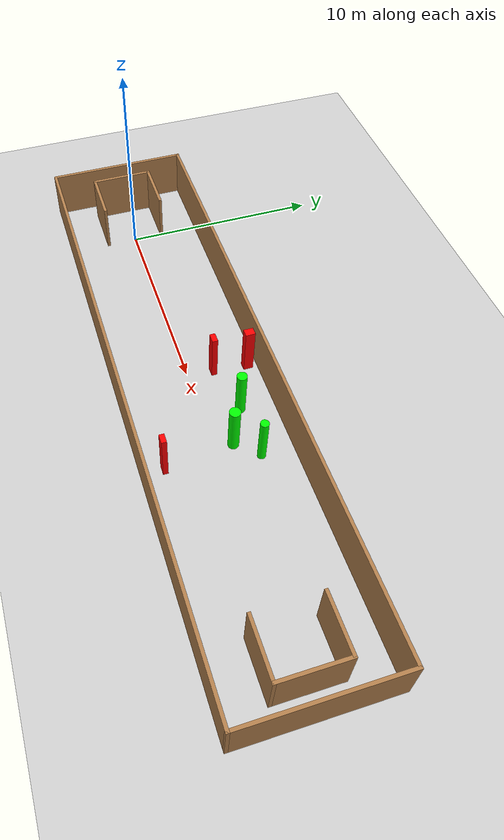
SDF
<sdf version="1.7">
 <world name="default">
  <light name="sun" type="directional">
   <pose>0 0 10 0 -0 0</pose>
   <diffuse>0.8 0.8 0.8 1</diffuse>
   <specular>0.2 0.2 0.2 1</specular>
   <attenuation>
    <range>1000</range>
    <constant>0.9</constant>
    <linear>0.01</linear>
    <quadratic>0.001</quadratic>
   </attenuation>
   <direction>-0.5 0.1 -0.9</direction>
   <spot><inner_angle>0</inner_angle><outer_angle>0</outer_angle><falloff>0</falloff></spot>
  </light>
  <model name="ground_plane">
   <static>1</static>
   <link name="link">
    <collision name="collision">
     <geometry><plane><normal>0 0 1</normal><size>100 100</size></plane></geometry>
     <surface>
      <contact><collide_bitmask>65535</collide_bitmask></contact>
      <friction><ode><mu>100</mu><mu2>50</mu2></ode></friction>
     </surface>
    </collision>
    <visual name="visual">
     <cast_shadows>0</cast_shadows>
     <geometry><plane><normal>0 0 1</normal><size>100 100</size></plane></geometry>
     <material>
      <script><uri>file://media/materials/scripts/gazebo.material</uri><name>Gazebo/Grey</name></script>
     </material>
    </visual>
   </link>
  </model>
  <gravity>0 0 -9.8</gravity>
  <magnetic_field>6e-06 2.3e-05 -4.2e-05</magnetic_field>
  <atmosphere type="adiabatic"/>
  <physics type="ode">
   <max_step_size>0.001</max_step_size>
   <real_time_factor>1</real_time_factor>
   <real_time_update_rate>1000</real_time_update_rate>
  </physics>
  <scene><ambient>0.4 0.4 0.4 1</ambient><background>0.7 0.7 0.7 1</background><shadows>1</shadows></scene>
  <spherical_coordinates>
   <surface_model>EARTH_WGS84</surface_model>
   <latitude_deg>0</latitude_deg>
   <longitude_deg>0</longitude_deg>
   <elevation>0</elevation>
   <heading_deg>0</heading_deg>
  </spherical_coordinates>
  <model name="my_base_walls">
   <link name="Wall_0">
    <collision name="Wall_0_Collision">
     <geometry><box><size>7.15 0.15 2.5</size></box></geometry>
     <pose>0 0 1.25 0 -0 0</pose>
    </collision>
    <visual name="Wall_0_Visual">
     <pose>0 0 1.25 0 -0 0</pose>
     <geometry><box><size>7.15 0.15 2.5</size></box></geometry>
     <material>
      <script><uri>file://media/materials/scripts/gazebo.material</uri><name>Gazebo/Wood</name></script>
      <ambient>1 1 1 1</ambient>
     </material>
     <meta><layer>0</layer></meta>
    </visual>
    <pose>-15 0 0 0 -0 1.5708</pose>
   </link>
   <link name="Wall_10">
    <collision name="Wall_10_Collision">
     <geometry><box><size>2.65 0.15 2.5</size></box></geometry>
     <pose>0 0 1.25 0 -0 0</pose>
    </collision>
    <visual name="Wall_10_Visual">
     <pose>0 0 1.25 0 -0 0</pose>
     <geometry><box><size>2.65 0.15 2.5</size></box></geometry>
     <material>
      <script><uri>file://media/materials/scripts/gazebo.material</uri><name>Gazebo/Wood</name></script>
      <ambient>1 1 1 1</ambient>
     </material>
     <meta><layer>0</layer></meta>
    </visual>
    <pose>-12.75 -1.5 0 0 -0 0</pose>
   </link>
   <link name="Wall_12">
    <collision name="Wall_12_Collision">
     <geometry><box><size>2.65 0.15 2.5</size></box></geometry>
     <pose>0 0 1.25 0 -0 0</pose>
    </collision>
    <visual name="Wall_12_Visual">
     <pose>0 0 1.25 0 -0 0</pose>
     <geometry><box><size>2.65 0.15 2.5</size></box></geometry>
     <material>
      <script><uri>file://media/materials/scripts/gazebo.material</uri><name>Gazebo/Wood</name></script>
      <ambient>1 1 1 1</ambient>
     </material>
     <meta><layer>0</layer></meta>
    </visual>
    <pose>-12.75 1.5 0 0 -0 0</pose>
   </link>
   <link name="Wall_14">
    <collision name="Wall_14_Collision">
     <geometry><box><size>3.15 0.15 2.5</size></box></geometry>
     <pose>0 0 1.25 0 -0 0</pose>
    </collision>
    <visual name="Wall_14_Visual">
     <pose>0 0 1.25 0 -0 0</pose>
     <geometry><box><size>3.15 0.15 2.5</size></box></geometry>
     <material>
      <script><uri>file://media/materials/scripts/gazebo.material</uri><name>Gazebo/Wood</name></script>
      <ambient>1 1 1 1</ambient>
     </material>
     <meta><layer>0</layer></meta>
    </visual>
    <pose>14 0 0 0 -0 -1.5708</pose>
   </link>
   <link name="Wall_15">
    <collision name="Wall_15_Collision">
     <geometry><box><size>2.65 0.15 2.5</size></box></geometry>
     <pose>0 0 1.25 0 -0 0</pose>
    </collision>
    <visual name="Wall_15_Visual">
     <pose>0 0 1.25 0 -0 0</pose>
     <geometry><box><size>2.65 0.15 2.5</size></box></geometry>
     <material>
      <script><uri>file://media/materials/scripts/gazebo.material</uri><name>Gazebo/Wood</name></script>
      <ambient>1 1 1 1</ambient>
     </material>
     <meta><layer>0</layer></meta>
    </visual>
    <pose>12.75 -1.5 0 0 -0 3.14159</pose>
   </link>
   <link name="Wall_17">
    <collision name="Wall_17_Collision">
     <geometry><box><size>2.65 0.15 2.5</size></box></geometry>
     <pose>0 0 1.25 0 -0 0</pose>
    </collision>
    <visual name="Wall_17_Visual">
     <pose>0 0 1.25 0 -0 0</pose>
     <geometry><box><size>2.65 0.15 2.5</size></box></geometry>
     <material>
      <script><uri>file://media/materials/scripts/gazebo.material</uri><name>Gazebo/Wood</name></script>
      <ambient>1 1 1 1</ambient>
     </material>
     <meta><layer>0</layer></meta>
    </visual>
    <pose>12.75 1.5 0 0 -0 3.14159</pose>
   </link>
   <link name="Wall_2">
    <collision name="Wall_2_Collision">
     <geometry><box><size>30.15 0.15 2.5</size></box></geometry>
     <pose>0 0 1.25 0 -0 0</pose>
    </collision>
    <visual name="Wall_2_Visual">
     <pose>0 0 1.25 0 -0 0</pose>
     <geometry><box><size>30.15 0.15 2.5</size></box></geometry>
     <material>
      <script><uri>file://media/materials/scripts/gazebo.material</uri><name>Gazebo/Wood</name></script>
      <ambient>1 1 1 1</ambient>
     </material>
     <meta><layer>0</layer></meta>
    </visual>
    <pose>-0 -3.5 0 0 -0 0</pose>
   </link>
   <link name="Wall_4">
    <collision name="Wall_4_Collision">
     <geometry><box><size>30.15 0.15 2.5</size></box></geometry>
     <pose>0 0 1.25 0 -0 0</pose>
    </collision>
    <visual name="Wall_4_Visual">
     <pose>0 0 1.25 0 -0 0</pose>
     <geometry><box><size>30.15 0.15 2.5</size></box></geometry>
     <material>
      <script><uri>file://media/materials/scripts/gazebo.material</uri><name>Gazebo/Wood</name></script>
      <ambient>1 1 1 1</ambient>
     </material>
     <meta><layer>0</layer></meta>
    </visual>
    <pose>-0 3.5 0 0 -0 0</pose>
   </link>
   <link name="Wall_6">
    <collision name="Wall_6_Collision">
     <geometry><box><size>7.15 0.15 2.5</size></box></geometry>
     <pose>0 0 1.25 0 -0 0</pose>
    </collision>
    <visual name="Wall_6_Visual">
     <pose>0 0 1.25 0 -0 0</pose>
     <geometry><box><size>7.15 0.15 2.5</size></box></geometry>
     <material>
      <script><uri>file://media/materials/scripts/gazebo.material</uri><name>Gazebo/Wood</name></script>
      <ambient>1 1 1 1</ambient>
     </material>
     <meta><layer>0</layer></meta>
    </visual>
    <pose>15 0 0 0 -0 -1.5708</pose>
   </link>
   <link name="Wall_9">
    <collision name="Wall_9_Collision">
     <geometry><box><size>3.15 0.15 2.5</size></box></geometry>
     <pose>0 0 1.25 0 -0 0</pose>
    </collision>
    <visual name="Wall_9_Visual">
     <pose>0 0 1.25 0 -0 0</pose>
     <geometry><box><size>3.15 0.15 2.5</size></box></geometry>
     <material>
      <script><uri>file://media/materials/scripts/gazebo.material</uri><name>Gazebo/Wood</name></script>
      <ambient>1 1 1 1</ambient>
     </material>
     <meta><layer>0</layer></meta>
    </visual>
    <pose>-14 0 0 0 -0 -1.5708</pose>
   </link>
   <static>1</static>
   <pose>11.5 0 0 0 -0 0</pose>
  </model>
  <model name="cylinder1">
   <static>1</static>
   <link name="link">
    <inertial>
     <mass>1</mass>
     <inertia><ixx>0.5</ixx><ixy>0</ixy><ixz>0</ixz><iyy>0.5</iyy><iyz>0</iyz><izz>1</izz></inertia>
    </inertial>
    <collision name="collision">
     <geometry><cylinder><radius>0.24134528215185203</radius><length>2.5</length></cylinder></geometry>
    </collision>
    <visual name="visual">
     <geometry><cylinder><radius>0.24134528215185203</radius><length>2.5</length></cylinder></geometry>
     <material>
      <ambient>0 1 0 1</ambient>
      <diffuse>0 1 0 1</diffuse>
      <specular>0.1 0.1 0.1 1</specular>
      <emissive>0 0 0 0</emissive>
     </material>
    </visual>
   </link>
   <pose>12.72687882485697 1.788080662336097 1.25 0 0 0</pose>
  </model>
  <model name="cylinder2">
   <static>1</static>
   <link name="link">
    <inertial>
     <mass>1</mass>
     <inertia><ixx>0.5</ixx><ixy>0</ixy><ixz>0</ixz><iyy>0.5</iyy><iyz>0</iyz><izz>1</izz></inertia>
    </inertial>
    <collision name="collision">
     <geometry><cylinder><radius>0.26146210566639366</radius><length>2.5</length></cylinder></geometry>
    </collision>
    <visual name="visual">
     <geometry><cylinder><radius>0.26146210566639366</radius><length>2.5</length></cylinder></geometry>
     <material>
      <ambient>0 1 0 1</ambient>
      <diffuse>0 1 0 1</diffuse>
      <specular>0.1 0.1 0.1 1</specular>
      <emissive>0 0 0 0</emissive>
     </material>
    </visual>
   </link>
   <pose>14.481925029085755 0.863327671299329 1.25 0 0 0</pose>
  </model>
  <model name="cylinder3">
   <static>1</static>
   <link name="link">
    <inertial>
     <mass>1</mass>
     <inertia><ixx>0.5</ixx><ixy>0</ixy><ixz>0</ixz><iyy>0.5</iyy><iyz>0</iyz><izz>1</izz></inertia>
    </inertial>
    <collision name="collision">
     <geometry><cylinder><radius>0.1986600040012237</radius><length>2.5</length></cylinder></geometry>
    </collision>
    <visual name="visual">
     <geometry><cylinder><radius>0.1986600040012237</radius><length>2.5</length></cylinder></geometry>
     <material>
      <ambient>0 1 0 1</ambient>
      <diffuse>0 1 0 1</diffuse>
      <specular>0.1 0.1 0.1 1</specular>
      <emissive>0 0 0 0</emissive>
     </material>
    </visual>
   </link>
   <pose>15.40482625739393 1.8777356149444735 1.25 0 0 0</pose>
  </model>
  <model name="box1">
   <static>1</static>
   <link name="link">
    <inertial>
     <mass>1</mass>
     <inertia><ixx>0.083</ixx><ixy>0</ixy><ixz>0</ixz><iyy>0.083</iyy><iyz>0</iyz><izz>0.083</izz></inertia>
    </inertial>
    <collision name="collision">
     <geometry><box><size>0.37795310483363054 0.46584434000870906 2.5</size></box></geometry>
    </collision>
    <visual name="visual">
     <geometry><box><size>0.37795310483363054 0.46584434000870906 2.5</size></box></geometry>
     <material>
      <ambient>1 0 0 1</ambient>
      <diffuse>1 0 0 1</diffuse>
      <specular>0.1 0.1 0.1 1</specular>
      <emissive>0 0 0 0</emissive>
     </material>
    </visual>
    <sensor name="my_contact" type="contact">
     <contact><collision>box_collision</collision><topic>__default_topic__</topic></contact>
    </sensor>
   </link>
   <pose>10.362612614937197 2.9602378386761874 1.25 0 0 0</pose>
  </model>
  <model name="box2">
   <static>1</static>
   <link name="link">
    <inertial>
     <mass>1</mass>
     <inertia><ixx>0.083</ixx><ixy>0</ixy><ixz>0</ixz><iyy>0.083</iyy><iyz>0</iyz><izz>0.083</izz></inertia>
    </inertial>
    <collision name="collision">
     <geometry><box><size>0.43717706790309496 0.24339606577019646 2.5</size></box></geometry>
    </collision>
    <visual name="visual">
     <geometry><box><size>0.43717706790309496 0.24339606577019646 2.5</size></box></geometry>
     <material>
      <ambient>1 0 0 1</ambient>
      <diffuse>1 0 0 1</diffuse>
      <specular>0.1 0.1 0.1 1</specular>
      <emissive>0 0 0 0</emissive>
     </material>
    </visual>
    <sensor name="my_contact" type="contact">
     <contact><collision>box_collision</collision><topic>__default_topic__</topic></contact>
    </sensor>
   </link>
   <pose>14.865946437980691 -2.4575197187040327 1.25 0 0 0</pose>
  </model>
  <model name="box3">
   <static>1</static>
   <link name="link">
    <inertial>
     <mass>1</mass>
     <inertia><ixx>0.083</ixx><ixy>0</ixy><ixz>0</ixz><iyy>0.083</iyy><iyz>0</iyz><izz>0.083</izz></inertia>
    </inertial>
    <collision name="collision">
     <geometry><box><size>0.466285013438069 0.2685519334468846 2.5</size></box></geometry>
    </collision>
    <visual name="visual">
     <geometry><box><size>0.466285013438069 0.2685519334468846 2.5</size></box></geometry>
     <material>
      <ambient>1 0 0 1</ambient>
      <diffuse>1 0 0 1</diffuse>
      <specular>0.1 0.1 0.1 1</specular>
      <emissive>0 0 0 0</emissive>
     </material>
    </visual>
    <sensor name="my_contact" type="contact">
     <contact><collision>box_collision</collision><topic>__default_topic__</topic></contact>
    </sensor>
   </link>
   <pose>10.213354907515875 1.2709965875620801 1.25 0 0 0</pose>
  </model>
 </world>
</sdf>
